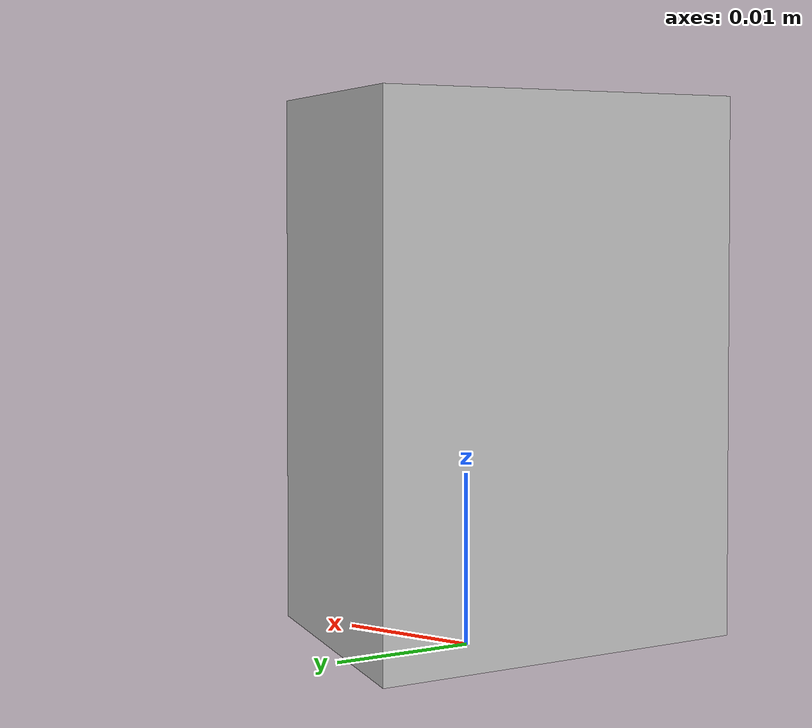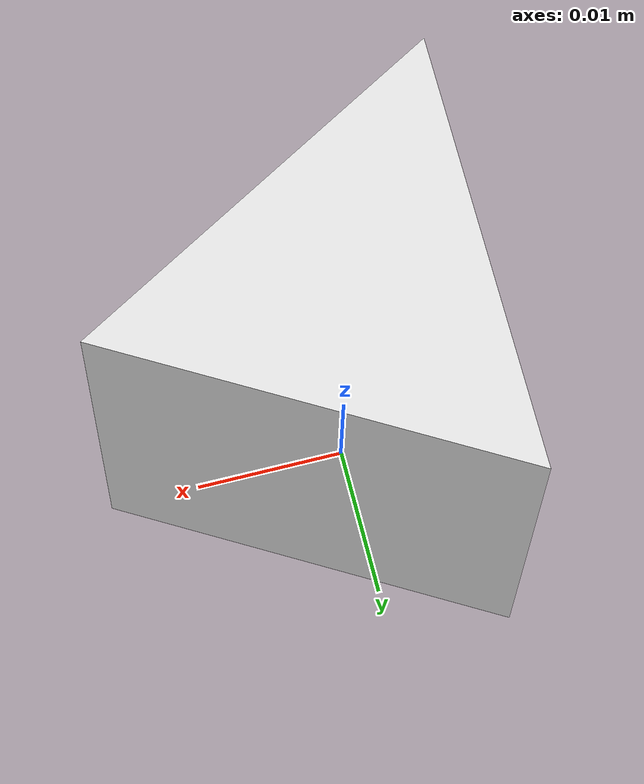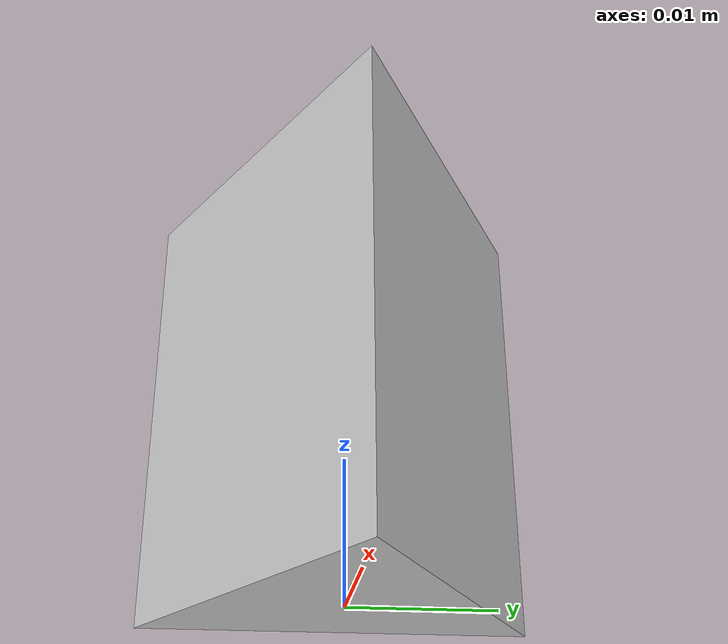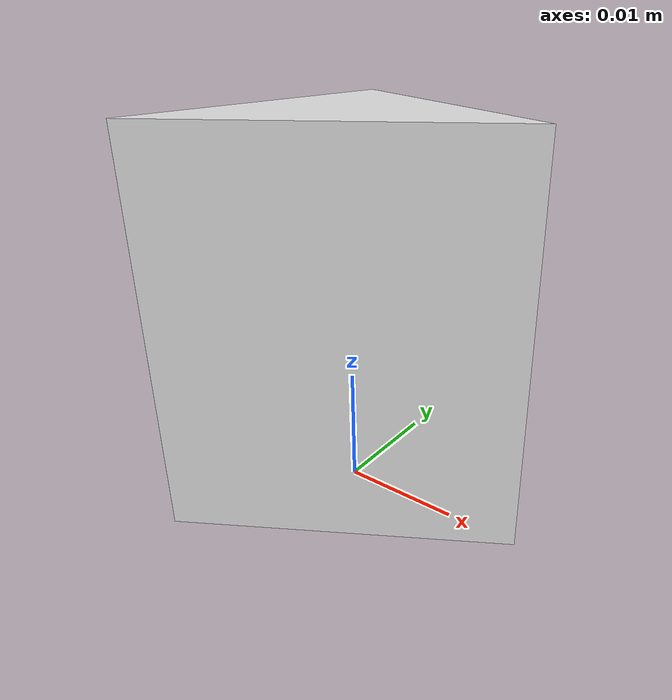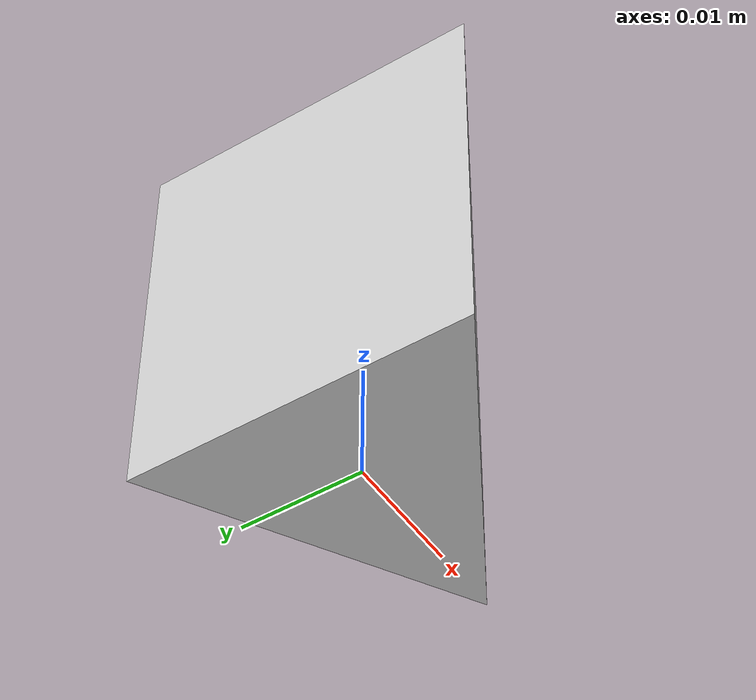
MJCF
<mujoco model="white_tri_cylinder">
  <compiler angle="radian" meshdir="assets" autolimits="true" />
  <option cone="elliptic" impratio="10" />
  <default>
    <default class="white_tri_cylinder">
      <default class="visual">
        <geom group="2" contype="0" conaffinity="0" />
      </default>
      <default class="collision">
        <geom group="3" condim="4" margin="0.001" />
      </default>
    </default>
  </default>
  <asset>
    <mesh name="white_tri_cylinder" file="tri_cylinder.obj"   />
  </asset>
  <worldbody>
    <body name="white_tri_cylinder_body" childclass="white_tri_cylinder">
      <geom type="mesh" class="visual" name="white_tri_cylinder_visual_geom" mesh="white_tri_cylinder" rgba="0.85 0.85 0.85 1" />
      <geom type="mesh" class="collision" name="white_tri_cylinder_collision_geom" mesh="white_tri_cylinder" friction="1.2 1.5 0.8" density="20" solimp="0.90 0.95" solref="0.004 1" />
      <joint type="free" name="white_tri_cylinder_joint" />
    </body>
  </worldbody>
</mujoco>
